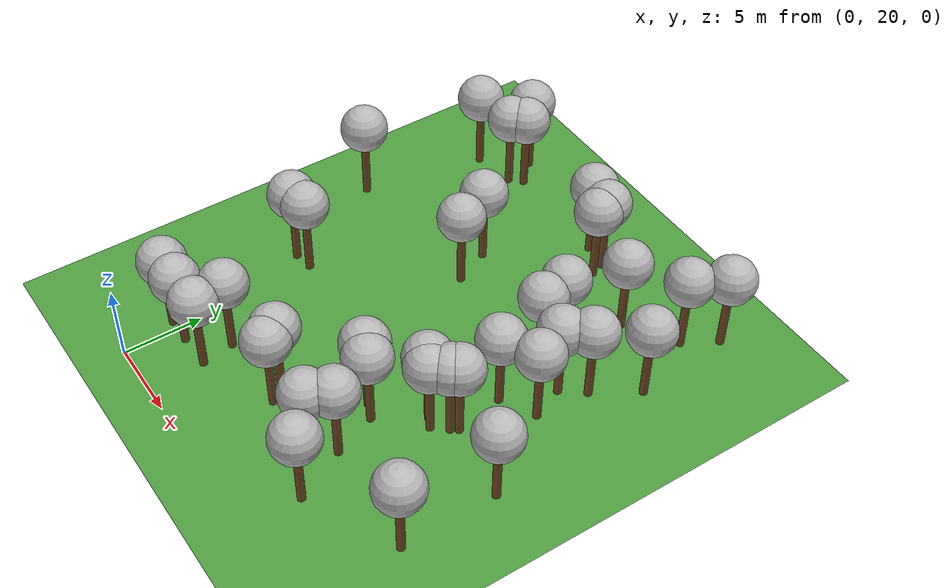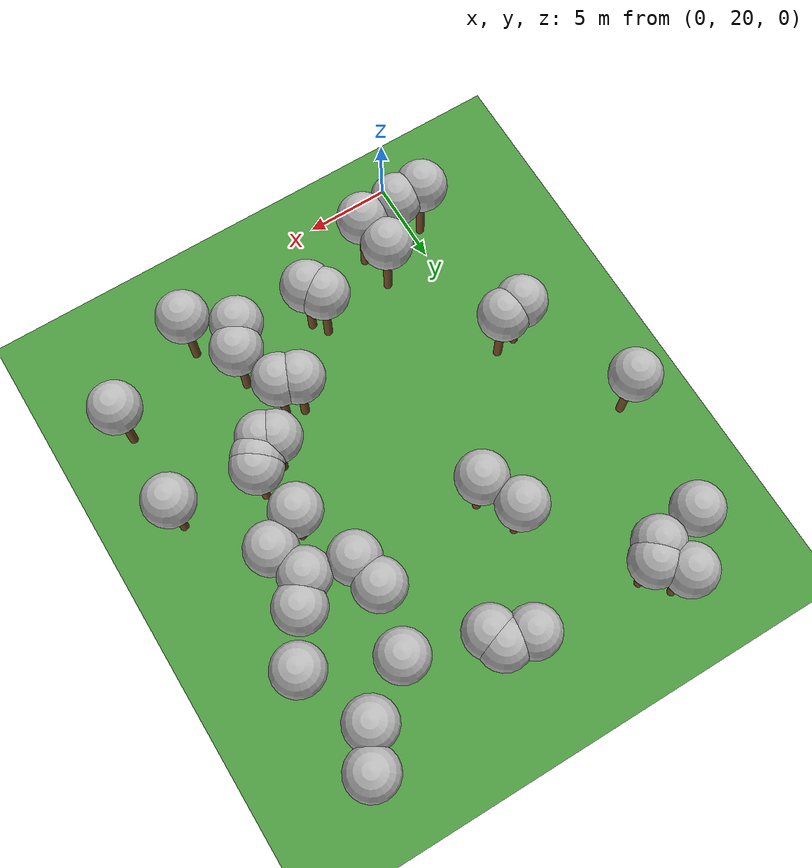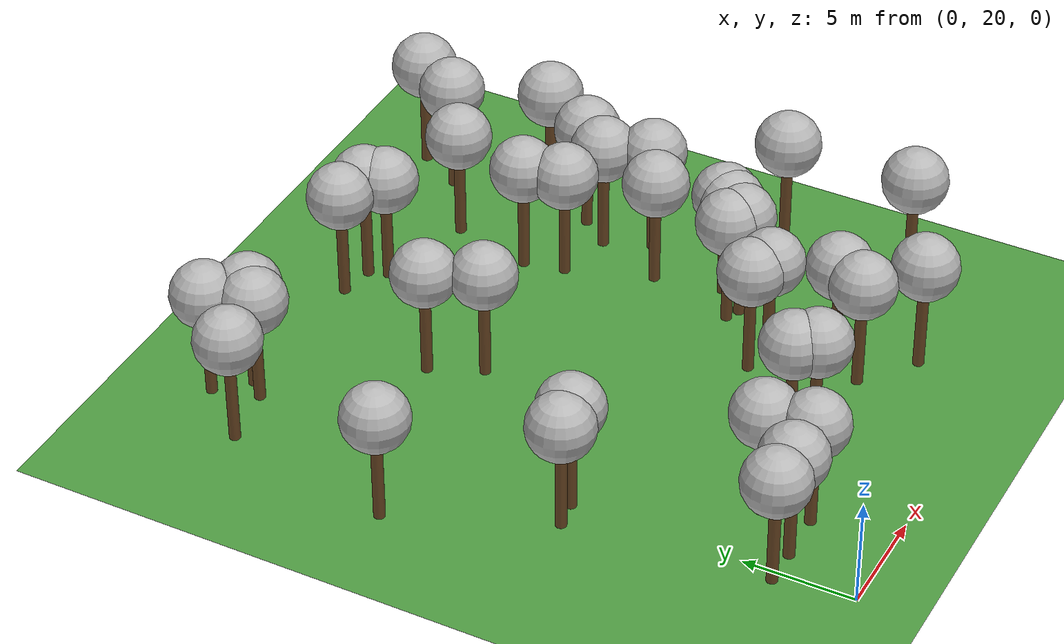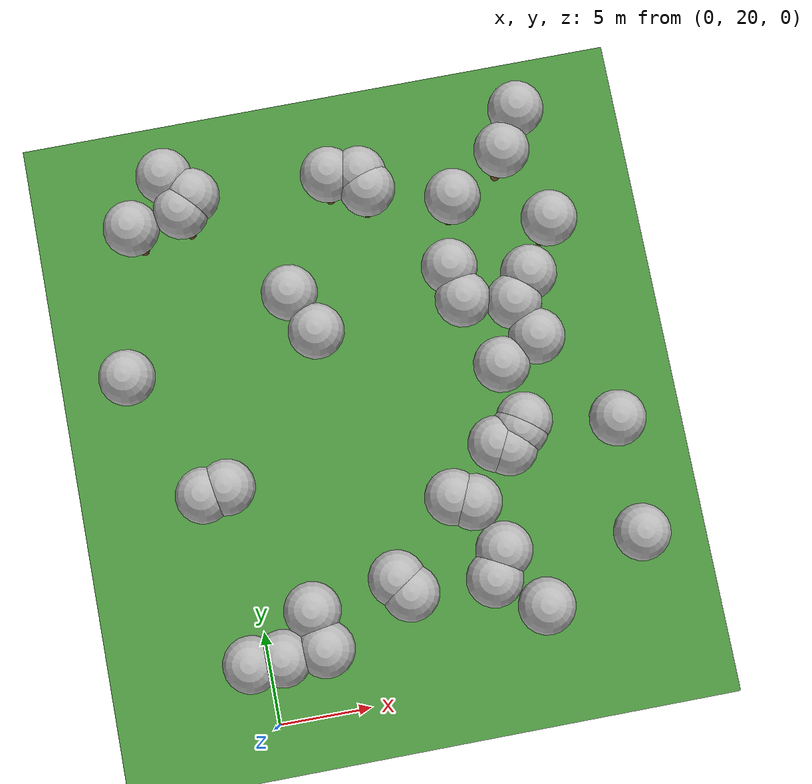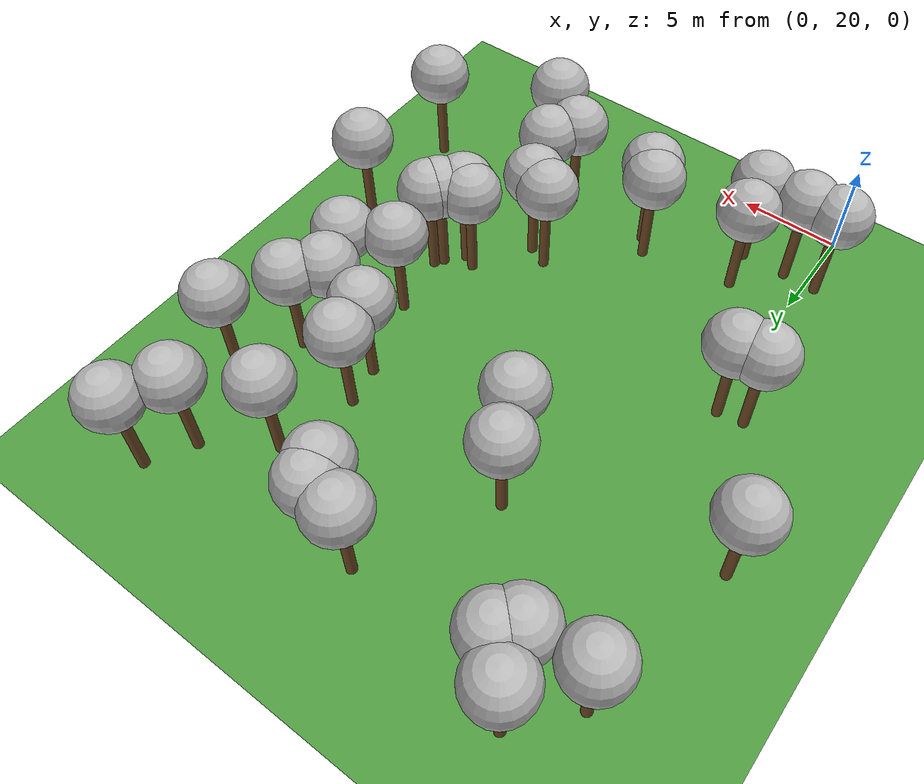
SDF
<sdf version="1.5">
 <world name="default">
  <model name="tree_simple477">
   <static>1</static>
   <link name="link">
    <pose>0 0 0.1 0 -0 0</pose>
    <collision name="collision_trunk">
     <pose>0 0 2 0 -0 0</pose>
     <geometry><cylinder><radius>0.25</radius><length>4</length></cylinder></geometry>
    </collision>
    <collision name="collision_treetop">
     <pose>0 0 5.2 0 -0 0</pose>
     <geometry><sphere><radius>1.5</radius></sphere></geometry>
    </collision>
    <visual name="trunk">
     <pose>0 0 2 0 -0 0</pose>
     <geometry><cylinder><radius>0.25</radius><length>4</length></cylinder></geometry>
     <material>
      <script>
       <uri>model://tree_simple/scripts</uri>
       <uri>model://tree_simple/materials/textures</uri>
       <name>TreeSimple/Trunk</name>
      </script>
     </material>
    </visual>
    <visual name="treetop">
     <pose>0 0 5.2 0 -0 0</pose>
     <geometry><sphere><radius>1.5</radius></sphere></geometry>
     <material>
      <script>
       <uri>model://tree_simple/scripts</uri>
       <uri>model://tree_simple/materials/textures</uri>
       <name>TreeSimple/Treetop</name>
      </script>
     </material>
    </visual>
   </link>
   <pose>-0.22927085135 32.6495918535 0 0 -0 0</pose>
  </model>
  <model name="tree_simple457">
   <static>1</static>
   <link name="link">
    <pose>0 0 0.1 0 -0 0</pose>
    <collision name="collision_trunk">
     <pose>0 0 2 0 -0 0</pose>
     <geometry><cylinder><radius>0.25</radius><length>4</length></cylinder></geometry>
    </collision>
    <collision name="collision_treetop">
     <pose>0 0 5.2 0 -0 0</pose>
     <geometry><sphere><radius>1.5</radius></sphere></geometry>
    </collision>
    <visual name="trunk">
     <pose>0 0 2 0 -0 0</pose>
     <geometry><cylinder><radius>0.25</radius><length>4</length></cylinder></geometry>
     <material>
      <script>
       <uri>model://tree_simple/scripts</uri>
       <uri>model://tree_simple/materials/textures</uri>
       <name>TreeSimple/Trunk</name>
      </script>
     </material>
    </visual>
    <visual name="treetop">
     <pose>0 0 5.2 0 -0 0</pose>
     <geometry><sphere><radius>1.5</radius></sphere></geometry>
     <material>
      <script>
       <uri>model://tree_simple/scripts</uri>
       <uri>model://tree_simple/materials/textures</uri>
       <name>TreeSimple/Treetop</name>
      </script>
     </material>
    </visual>
   </link>
   <pose>13.2865883098 26.7984826025 0 0 -0 0</pose>
  </model>
  <model name="tree_simple445">
   <static>1</static>
   <link name="link">
    <pose>0 0 0.1 0 -0 0</pose>
    <collision name="collision_trunk">
     <pose>0 0 2 0 -0 0</pose>
     <geometry><cylinder><radius>0.25</radius><length>4</length></cylinder></geometry>
    </collision>
    <collision name="collision_treetop">
     <pose>0 0 5.2 0 -0 0</pose>
     <geometry><sphere><radius>1.5</radius></sphere></geometry>
    </collision>
    <visual name="trunk">
     <pose>0 0 2 0 -0 0</pose>
     <geometry><cylinder><radius>0.25</radius><length>4</length></cylinder></geometry>
     <material>
      <script>
       <uri>model://tree_simple/scripts</uri>
       <uri>model://tree_simple/materials/textures</uri>
       <name>TreeSimple/Trunk</name>
      </script>
     </material>
    </visual>
    <visual name="treetop">
     <pose>0 0 5.2 0 -0 0</pose>
     <geometry><sphere><radius>1.5</radius></sphere></geometry>
     <material>
      <script>
       <uri>model://tree_simple/scripts</uri>
       <uri>model://tree_simple/materials/textures</uri>
       <name>TreeSimple/Treetop</name>
      </script>
     </material>
    </visual>
   </link>
   <pose>17.3330924595 47.7477611906 0 0 -0 0</pose>
  </model>
  <model name="tree_simple443">
   <static>1</static>
   <link name="link">
    <pose>0 0 0.1 0 -0 0</pose>
    <collision name="collision_trunk">
     <pose>0 0 2 0 -0 0</pose>
     <geometry><cylinder><radius>0.25</radius><length>4</length></cylinder></geometry>
    </collision>
    <collision name="collision_treetop">
     <pose>0 0 5.2 0 -0 0</pose>
     <geometry><sphere><radius>1.5</radius></sphere></geometry>
    </collision>
    <visual name="trunk">
     <pose>0 0 2 0 -0 0</pose>
     <geometry><cylinder><radius>0.25</radius><length>4</length></cylinder></geometry>
     <material>
      <script>
       <uri>model://tree_simple/scripts</uri>
       <uri>model://tree_simple/materials/textures</uri>
       <name>TreeSimple/Trunk</name>
      </script>
     </material>
    </visual>
    <visual name="treetop">
     <pose>0 0 5.2 0 -0 0</pose>
     <geometry><sphere><radius>1.5</radius></sphere></geometry>
     <material>
      <script>
       <uri>model://tree_simple/scripts</uri>
       <uri>model://tree_simple/materials/textures</uri>
       <name>TreeSimple/Treetop</name>
      </script>
     </material>
    </visual>
   </link>
   <pose>20.4518447393 32.4372971603 0 0 -0 0</pose>
  </model>
  <model name="tree_simple419">
   <static>1</static>
   <link name="link">
    <pose>0 0 0.1 0 -0 0</pose>
    <collision name="collision_trunk">
     <pose>0 0 2 0 -0 0</pose>
     <geometry><cylinder><radius>0.25</radius><length>4</length></cylinder></geometry>
    </collision>
    <collision name="collision_treetop">
     <pose>0 0 5.2 0 -0 0</pose>
     <geometry><sphere><radius>1.5</radius></sphere></geometry>
    </collision>
    <visual name="trunk">
     <pose>0 0 2 0 -0 0</pose>
     <geometry><cylinder><radius>0.25</radius><length>4</length></cylinder></geometry>
     <material>
      <script>
       <uri>model://tree_simple/scripts</uri>
       <uri>model://tree_simple/materials/textures</uri>
       <name>TreeSimple/Trunk</name>
      </script>
     </material>
    </visual>
    <visual name="treetop">
     <pose>0 0 5.2 0 -0 0</pose>
     <geometry><sphere><radius>1.5</radius></sphere></geometry>
     <material>
      <script>
       <uri>model://tree_simple/scripts</uri>
       <uri>model://tree_simple/materials/textures</uri>
       <name>TreeSimple/Treetop</name>
      </script>
     </material>
    </visual>
   </link>
   <pose>15.0608261067 36.3391301174 0 0 -0 0</pose>
  </model>
  <model name="tree_simple413">
   <static>1</static>
   <link name="link">
    <pose>0 0 0.1 0 -0 0</pose>
    <collision name="collision_trunk">
     <pose>0 0 2 0 -0 0</pose>
     <geometry><cylinder><radius>0.25</radius><length>4</length></cylinder></geometry>
    </collision>
    <collision name="collision_treetop">
     <pose>0 0 5.2 0 -0 0</pose>
     <geometry><sphere><radius>1.5</radius></sphere></geometry>
    </collision>
    <visual name="trunk">
     <pose>0 0 2 0 -0 0</pose>
     <geometry><cylinder><radius>0.25</radius><length>4</length></cylinder></geometry>
     <material>
      <script>
       <uri>model://tree_simple/scripts</uri>
       <uri>model://tree_simple/materials/textures</uri>
       <name>TreeSimple/Trunk</name>
      </script>
     </material>
    </visual>
    <visual name="treetop">
     <pose>0 0 5.2 0 -0 0</pose>
     <geometry><sphere><radius>1.5</radius></sphere></geometry>
     <material>
      <script>
       <uri>model://tree_simple/scripts</uri>
       <uri>model://tree_simple/materials/textures</uri>
       <name>TreeSimple/Treetop</name>
      </script>
     </material>
    </visual>
   </link>
   <pose>4.79772995732 42.1907919742 0 0 -0 0</pose>
  </model>
  <model name="tree_simple405">
   <static>1</static>
   <link name="link">
    <pose>0 0 0.1 0 -0 0</pose>
    <collision name="collision_trunk">
     <pose>0 0 2 0 -0 0</pose>
     <geometry><cylinder><radius>0.25</radius><length>4</length></cylinder></geometry>
    </collision>
    <collision name="collision_treetop">
     <pose>0 0 5.2 0 -0 0</pose>
     <geometry><sphere><radius>1.5</radius></sphere></geometry>
    </collision>
    <visual name="trunk">
     <pose>0 0 2 0 -0 0</pose>
     <geometry><cylinder><radius>0.25</radius><length>4</length></cylinder></geometry>
     <material>
      <script>
       <uri>model://tree_simple/scripts</uri>
       <uri>model://tree_simple/materials/textures</uri>
       <name>TreeSimple/Trunk</name>
      </script>
     </material>
    </visual>
    <visual name="treetop">
     <pose>0 0 5.2 0 -0 0</pose>
     <geometry><sphere><radius>1.5</radius></sphere></geometry>
     <material>
      <script>
       <uri>model://tree_simple/scripts</uri>
       <uri>model://tree_simple/materials/textures</uri>
       <name>TreeSimple/Treetop</name>
      </script>
     </material>
    </visual>
   </link>
   <pose>13.9640568795 32.2793272532 0 0 -0 0</pose>
  </model>
  <model name="tree_simple401">
   <static>1</static>
   <link name="link">
    <pose>0 0 0.1 0 -0 0</pose>
    <collision name="collision_trunk">
     <pose>0 0 2 0 -0 0</pose>
     <geometry><cylinder><radius>0.25</radius><length>4</length></cylinder></geometry>
    </collision>
    <collision name="collision_treetop">
     <pose>0 0 5.2 0 -0 0</pose>
     <geometry><sphere><radius>1.5</radius></sphere></geometry>
    </collision>
    <visual name="trunk">
     <pose>0 0 2 0 -0 0</pose>
     <geometry><cylinder><radius>0.25</radius><length>4</length></cylinder></geometry>
     <material>
      <script>
       <uri>model://tree_simple/scripts</uri>
       <uri>model://tree_simple/materials/textures</uri>
       <name>TreeSimple/Trunk</name>
      </script>
     </material>
    </visual>
    <visual name="treetop">
     <pose>0 0 5.2 0 -0 0</pose>
     <geometry><sphere><radius>1.5</radius></sphere></geometry>
     <material>
      <script>
       <uri>model://tree_simple/scripts</uri>
       <uri>model://tree_simple/materials/textures</uri>
       <name>TreeSimple/Treetop</name>
      </script>
     </material>
    </visual>
   </link>
   <pose>18.5119614972 49.8300347258 0 0 -0 0</pose>
  </model>
  <model name="tree_simple381">
   <static>1</static>
   <link name="link">
    <pose>0 0 0.1 0 -0 0</pose>
    <collision name="collision_trunk">
     <pose>0 0 2 0 -0 0</pose>
     <geometry><cylinder><radius>0.25</radius><length>4</length></cylinder></geometry>
    </collision>
    <collision name="collision_treetop">
     <pose>0 0 5.2 0 -0 0</pose>
     <geometry><sphere><radius>1.5</radius></sphere></geometry>
    </collision>
    <visual name="trunk">
     <pose>0 0 2 0 -0 0</pose>
     <geometry><cylinder><radius>0.25</radius><length>4</length></cylinder></geometry>
     <material>
      <script>
       <uri>model://tree_simple/scripts</uri>
       <uri>model://tree_simple/materials/textures</uri>
       <name>TreeSimple/Trunk</name>
      </script>
     </material>
    </visual>
    <visual name="treetop">
     <pose>0 0 5.2 0 -0 0</pose>
     <geometry><sphere><radius>1.5</radius></sphere></geometry>
     <material>
      <script>
       <uri>model://tree_simple/scripts</uri>
       <uri>model://tree_simple/materials/textures</uri>
       <name>TreeSimple/Treetop</name>
      </script>
     </material>
    </visual>
   </link>
   <pose>14.598493672 31.9609585056 0 0 -0 0</pose>
  </model>
  <model name="tree_simple372">
   <static>1</static>
   <link name="link">
    <pose>0 0 0.1 0 -0 0</pose>
    <collision name="collision_trunk">
     <pose>0 0 2 0 -0 0</pose>
     <geometry><cylinder><radius>0.25</radius><length>4</length></cylinder></geometry>
    </collision>
    <collision name="collision_treetop">
     <pose>0 0 5.2 0 -0 0</pose>
     <geometry><sphere><radius>1.5</radius></sphere></geometry>
    </collision>
    <visual name="trunk">
     <pose>0 0 2 0 -0 0</pose>
     <geometry><cylinder><radius>0.25</radius><length>4</length></cylinder></geometry>
     <material>
      <script>
       <uri>model://tree_simple/scripts</uri>
       <uri>model://tree_simple/materials/textures</uri>
       <name>TreeSimple/Trunk</name>
      </script>
     </material>
    </visual>
    <visual name="treetop">
     <pose>0 0 5.2 0 -0 0</pose>
     <geometry><sphere><radius>1.5</radius></sphere></geometry>
     <material>
      <script>
       <uri>model://tree_simple/scripts</uri>
       <uri>model://tree_simple/materials/textures</uri>
       <name>TreeSimple/Treetop</name>
      </script>
     </material>
    </visual>
   </link>
   <pose>19.0807104519 43.6051965294 0 0 -0 0</pose>
  </model>
  <model name="tree_simple367">
   <static>1</static>
   <link name="link">
    <pose>0 0 0.1 0 -0 0</pose>
    <collision name="collision_trunk">
     <pose>0 0 2 0 -0 0</pose>
     <geometry><cylinder><radius>0.25</radius><length>4</length></cylinder></geometry>
    </collision>
    <collision name="collision_treetop">
     <pose>0 0 5.2 0 -0 0</pose>
     <geometry><sphere><radius>1.5</radius></sphere></geometry>
    </collision>
    <visual name="trunk">
     <pose>0 0 2 0 -0 0</pose>
     <geometry><cylinder><radius>0.25</radius><length>4</length></cylinder></geometry>
     <material>
      <script>
       <uri>model://tree_simple/scripts</uri>
       <uri>model://tree_simple/materials/textures</uri>
       <name>TreeSimple/Trunk</name>
      </script>
     </material>
    </visual>
    <visual name="treetop">
     <pose>0 0 5.2 0 -0 0</pose>
     <geometry><sphere><radius>1.5</radius></sphere></geometry>
     <material>
      <script>
       <uri>model://tree_simple/scripts</uri>
       <uri>model://tree_simple/materials/textures</uri>
       <name>TreeSimple/Treetop</name>
      </script>
     </material>
    </visual>
   </link>
   <pose>14.2659299001 45.7179827091 0 0 -0 0</pose>
  </model>
  <model name="tree_simple365">
   <static>1</static>
   <link name="link">
    <pose>0 0 0.1 0 -0 0</pose>
    <collision name="collision_trunk">
     <pose>0 0 2 0 -0 0</pose>
     <geometry><cylinder><radius>0.25</radius><length>4</length></cylinder></geometry>
    </collision>
    <collision name="collision_treetop">
     <pose>0 0 5.2 0 -0 0</pose>
     <geometry><sphere><radius>1.5</radius></sphere></geometry>
    </collision>
    <visual name="trunk">
     <pose>0 0 2 0 -0 0</pose>
     <geometry><cylinder><radius>0.25</radius><length>4</length></cylinder></geometry>
     <material>
      <script>
       <uri>model://tree_simple/scripts</uri>
       <uri>model://tree_simple/materials/textures</uri>
       <name>TreeSimple/Trunk</name>
      </script>
     </material>
    </visual>
    <visual name="treetop">
     <pose>0 0 5.2 0 -0 0</pose>
     <geometry><sphere><radius>1.5</radius></sphere></geometry>
     <material>
      <script>
       <uri>model://tree_simple/scripts</uri>
       <uri>model://tree_simple/materials/textures</uri>
       <name>TreeSimple/Treetop</name>
      </script>
     </material>
    </visual>
   </link>
   <pose>7.96669325113 48.1339153876 0 0 -0 0</pose>
  </model>
  <model name="tree_simple356">
   <static>1</static>
   <link name="link">
    <pose>0 0 0.1 0 -0 0</pose>
    <collision name="collision_trunk">
     <pose>0 0 2 0 -0 0</pose>
     <geometry><cylinder><radius>0.25</radius><length>4</length></cylinder></geometry>
    </collision>
    <collision name="collision_treetop">
     <pose>0 0 5.2 0 -0 0</pose>
     <geometry><sphere><radius>1.5</radius></sphere></geometry>
    </collision>
    <visual name="trunk">
     <pose>0 0 2 0 -0 0</pose>
     <geometry><cylinder><radius>0.25</radius><length>4</length></cylinder></geometry>
     <material>
      <script>
       <uri>model://tree_simple/scripts</uri>
       <uri>model://tree_simple/materials/textures</uri>
       <name>TreeSimple/Trunk</name>
      </script>
     </material>
    </visual>
    <visual name="treetop">
     <pose>0 0 5.2 0 -0 0</pose>
     <geometry><sphere><radius>1.5</radius></sphere></geometry>
     <material>
      <script>
       <uri>model://tree_simple/scripts</uri>
       <uri>model://tree_simple/materials/textures</uri>
       <name>TreeSimple/Treetop</name>
      </script>
     </material>
    </visual>
   </link>
   <pose>-2.83030100633 47.164879459 0 0 -0 0</pose>
  </model>
  <model name="tree_simple340">
   <static>1</static>
   <link name="link">
    <pose>0 0 0.1 0 -0 0</pose>
    <collision name="collision_trunk">
     <pose>0 0 2 0 -0 0</pose>
     <geometry><cylinder><radius>0.25</radius><length>4</length></cylinder></geometry>
    </collision>
    <collision name="collision_treetop">
     <pose>0 0 5.2 0 -0 0</pose>
     <geometry><sphere><radius>1.5</radius></sphere></geometry>
    </collision>
    <visual name="trunk">
     <pose>0 0 2 0 -0 0</pose>
     <geometry><cylinder><radius>0.25</radius><length>4</length></cylinder></geometry>
     <material>
      <script>
       <uri>model://tree_simple/scripts</uri>
       <uri>model://tree_simple/materials/textures</uri>
       <name>TreeSimple/Trunk</name>
      </script>
     </material>
    </visual>
    <visual name="treetop">
     <pose>0 0 5.2 0 -0 0</pose>
     <geometry><sphere><radius>1.5</radius></sphere></geometry>
     <material>
      <script>
       <uri>model://tree_simple/scripts</uri>
       <uri>model://tree_simple/materials/textures</uri>
       <name>TreeSimple/Treetop</name>
      </script>
     </material>
    </visual>
   </link>
   <pose>15.6359324045 33.2415832038 0 0 -0 0</pose>
  </model>
  <model name="tree_simple339">
   <static>1</static>
   <link name="link">
    <pose>0 0 0.1 0 -0 0</pose>
    <collision name="collision_trunk">
     <pose>0 0 2 0 -0 0</pose>
     <geometry><cylinder><radius>0.25</radius><length>4</length></cylinder></geometry>
    </collision>
    <collision name="collision_treetop">
     <pose>0 0 5.2 0 -0 0</pose>
     <geometry><sphere><radius>1.5</radius></sphere></geometry>
    </collision>
    <visual name="trunk">
     <pose>0 0 2 0 -0 0</pose>
     <geometry><cylinder><radius>0.25</radius><length>4</length></cylinder></geometry>
     <material>
      <script>
       <uri>model://tree_simple/scripts</uri>
       <uri>model://tree_simple/materials/textures</uri>
       <name>TreeSimple/Trunk</name>
      </script>
     </material>
    </visual>
    <visual name="treetop">
     <pose>0 0 5.2 0 -0 0</pose>
     <geometry><sphere><radius>1.5</radius></sphere></geometry>
     <material>
      <script>
       <uri>model://tree_simple/scripts</uri>
       <uri>model://tree_simple/materials/textures</uri>
       <name>TreeSimple/Treetop</name>
      </script>
     </material>
    </visual>
   </link>
   <pose>8.14193712957 25.5166560065 0 0 -0 0</pose>
  </model>
  <model name="tree_simple328">
   <static>1</static>
   <link name="link">
    <pose>0 0 0.1 0 -0 0</pose>
    <collision name="collision_trunk">
     <pose>0 0 2 0 -0 0</pose>
     <geometry><cylinder><radius>0.25</radius><length>4</length></cylinder></geometry>
    </collision>
    <collision name="collision_treetop">
     <pose>0 0 5.2 0 -0 0</pose>
     <geometry><sphere><radius>1.5</radius></sphere></geometry>
    </collision>
    <visual name="trunk">
     <pose>0 0 2 0 -0 0</pose>
     <geometry><cylinder><radius>0.25</radius><length>4</length></cylinder></geometry>
     <material>
      <script>
       <uri>model://tree_simple/scripts</uri>
       <uri>model://tree_simple/materials/textures</uri>
       <name>TreeSimple/Trunk</name>
      </script>
     </material>
    </visual>
    <visual name="treetop">
     <pose>0 0 5.2 0 -0 0</pose>
     <geometry><sphere><radius>1.5</radius></sphere></geometry>
     <material>
      <script>
       <uri>model://tree_simple/scripts</uri>
       <uri>model://tree_simple/materials/textures</uri>
       <name>TreeSimple/Treetop</name>
      </script>
     </material>
    </visual>
   </link>
   <pose>3.34573808519 23.5188113382 0 0 -0 0</pose>
  </model>
  <model name="tree_simple325">
   <static>1</static>
   <link name="link">
    <pose>0 0 0.1 0 -0 0</pose>
    <collision name="collision_trunk">
     <pose>0 0 2 0 -0 0</pose>
     <geometry><cylinder><radius>0.25</radius><length>4</length></cylinder></geometry>
    </collision>
    <collision name="collision_treetop">
     <pose>0 0 5.2 0 -0 0</pose>
     <geometry><sphere><radius>1.5</radius></sphere></geometry>
    </collision>
    <visual name="trunk">
     <pose>0 0 2 0 -0 0</pose>
     <geometry><cylinder><radius>0.25</radius><length>4</length></cylinder></geometry>
     <material>
      <script>
       <uri>model://tree_simple/scripts</uri>
       <uri>model://tree_simple/materials/textures</uri>
       <name>TreeSimple/Trunk</name>
      </script>
     </material>
    </visual>
    <visual name="treetop">
     <pose>0 0 5.2 0 -0 0</pose>
     <geometry><sphere><radius>1.5</radius></sphere></geometry>
     <material>
      <script>
       <uri>model://tree_simple/scripts</uri>
       <uri>model://tree_simple/materials/textures</uri>
       <name>TreeSimple/Treetop</name>
      </script>
     </material>
    </visual>
   </link>
   <pose>16.3512762839 39.5353955834 0 0 -0 0</pose>
  </model>
  <model name="tree_simple320">
   <static>1</static>
   <link name="link">
    <pose>0 0 0.1 0 -0 0</pose>
    <collision name="collision_trunk">
     <pose>0 0 2 0 -0 0</pose>
     <geometry><cylinder><radius>0.25</radius><length>4</length></cylinder></geometry>
    </collision>
    <collision name="collision_treetop">
     <pose>0 0 5.2 0 -0 0</pose>
     <geometry><sphere><radius>1.5</radius></sphere></geometry>
    </collision>
    <visual name="trunk">
     <pose>0 0 2 0 -0 0</pose>
     <geometry><cylinder><radius>0.25</radius><length>4</length></cylinder></geometry>
     <material>
      <script>
       <uri>model://tree_simple/scripts</uri>
       <uri>model://tree_simple/materials/textures</uri>
       <name>TreeSimple/Trunk</name>
      </script>
     </material>
    </visual>
    <visual name="treetop">
     <pose>0 0 5.2 0 -0 0</pose>
     <geometry><sphere><radius>1.5</radius></sphere></geometry>
     <material>
      <script>
       <uri>model://tree_simple/scripts</uri>
       <uri>model://tree_simple/materials/textures</uri>
       <name>TreeSimple/Treetop</name>
      </script>
     </material>
    </visual>
   </link>
   <pose>17.4267796311 40.9028236297 0 0 -0 0</pose>
  </model>
  <model name="tree_simple302">
   <static>1</static>
   <link name="link">
    <pose>0 0 0.1 0 -0 0</pose>
    <collision name="collision_trunk">
     <pose>0 0 2 0 -0 0</pose>
     <geometry><cylinder><radius>0.25</radius><length>4</length></cylinder></geometry>
    </collision>
    <collision name="collision_treetop">
     <pose>0 0 5.2 0 -0 0</pose>
     <geometry><sphere><radius>1.5</radius></sphere></geometry>
    </collision>
    <visual name="trunk">
     <pose>0 0 2 0 -0 0</pose>
     <geometry><cylinder><radius>0.25</radius><length>4</length></cylinder></geometry>
     <material>
      <script>
       <uri>model://tree_simple/scripts</uri>
       <uri>model://tree_simple/materials/textures</uri>
       <name>TreeSimple/Trunk</name>
      </script>
     </material>
    </visual>
    <visual name="treetop">
     <pose>0 0 5.2 0 -0 0</pose>
     <geometry><sphere><radius>1.5</radius></sphere></geometry>
     <material>
      <script>
       <uri>model://tree_simple/scripts</uri>
       <uri>model://tree_simple/materials/textures</uri>
       <name>TreeSimple/Treetop</name>
      </script>
     </material>
    </visual>
   </link>
   <pose>-4.36833306423 39.3035065939 0 0 -0 0</pose>
  </model>
  <model name="tree_simple299">
   <static>1</static>
   <link name="link">
    <pose>0 0 0.1 0 -0 0</pose>
    <collision name="collision_trunk">
     <pose>0 0 2 0 -0 0</pose>
     <geometry><cylinder><radius>0.25</radius><length>4</length></cylinder></geometry>
    </collision>
    <collision name="collision_treetop">
     <pose>0 0 5.2 0 -0 0</pose>
     <geometry><sphere><radius>1.5</radius></sphere></geometry>
    </collision>
    <visual name="trunk">
     <pose>0 0 2 0 -0 0</pose>
     <geometry><cylinder><radius>0.25</radius><length>4</length></cylinder></geometry>
     <material>
      <script>
       <uri>model://tree_simple/scripts</uri>
       <uri>model://tree_simple/materials/textures</uri>
       <name>TreeSimple/Trunk</name>
      </script>
     </material>
    </visual>
    <visual name="treetop">
     <pose>0 0 5.2 0 -0 0</pose>
     <geometry><sphere><radius>1.5</radius></sphere></geometry>
     <material>
      <script>
       <uri>model://tree_simple/scripts</uri>
       <uri>model://tree_simple/materials/textures</uri>
       <name>TreeSimple/Treetop</name>
      </script>
     </material>
    </visual>
   </link>
   <pose>-1.46806320409 32.459422197 0 0 -0 0</pose>
  </model>
  <model name="tree_simple287">
   <static>1</static>
   <link name="link">
    <pose>0 0 0.1 0 -0 0</pose>
    <collision name="collision_trunk">
     <pose>0 0 2 0 -0 0</pose>
     <geometry><cylinder><radius>0.25</radius><length>4</length></cylinder></geometry>
    </collision>
    <collision name="collision_treetop">
     <pose>0 0 5.2 0 -0 0</pose>
     <geometry><sphere><radius>1.5</radius></sphere></geometry>
    </collision>
    <visual name="trunk">
     <pose>0 0 2 0 -0 0</pose>
     <geometry><cylinder><radius>0.25</radius><length>4</length></cylinder></geometry>
     <material>
      <script>
       <uri>model://tree_simple/scripts</uri>
       <uri>model://tree_simple/materials/textures</uri>
       <name>TreeSimple/Trunk</name>
      </script>
     </material>
    </visual>
    <visual name="treetop">
     <pose>0 0 5.2 0 -0 0</pose>
     <geometry><sphere><radius>1.5</radius></sphere></geometry>
     <material>
      <script>
       <uri>model://tree_simple/scripts</uri>
       <uri>model://tree_simple/materials/textures</uri>
       <name>TreeSimple/Treetop</name>
      </script>
     </material>
    </visual>
   </link>
   <pose>5.81960290033 39.8953620518 0 0 -0 0</pose>
  </model>
  <model name="tree_simple275">
   <static>1</static>
   <link name="link">
    <pose>0 0 0.1 0 -0 0</pose>
    <collision name="collision_trunk">
     <pose>0 0 2 0 -0 0</pose>
     <geometry><cylinder><radius>0.25</radius><length>4</length></cylinder></geometry>
    </collision>
    <collision name="collision_treetop">
     <pose>0 0 5.2 0 -0 0</pose>
     <geometry><sphere><radius>1.5</radius></sphere></geometry>
    </collision>
    <visual name="trunk">
     <pose>0 0 2 0 -0 0</pose>
     <geometry><cylinder><radius>0.25</radius><length>4</length></cylinder></geometry>
     <material>
      <script>
       <uri>model://tree_simple/scripts</uri>
       <uri>model://tree_simple/materials/textures</uri>
       <name>TreeSimple/Trunk</name>
      </script>
     </material>
    </visual>
    <visual name="treetop">
     <pose>0 0 5.2 0 -0 0</pose>
     <geometry><sphere><radius>1.5</radius></sphere></geometry>
     <material>
      <script>
       <uri>model://tree_simple/scripts</uri>
       <uri>model://tree_simple/materials/textures</uri>
       <name>TreeSimple/Treetop</name>
      </script>
     </material>
    </visual>
   </link>
   <pose>11.2194181464 29.9629539421 0 0 -0 0</pose>
  </model>
  <model name="tree_simple273">
   <static>1</static>
   <link name="link">
    <pose>0 0 0.1 0 -0 0</pose>
    <collision name="collision_trunk">
     <pose>0 0 2 0 -0 0</pose>
     <geometry><cylinder><radius>0.25</radius><length>4</length></cylinder></geometry>
    </collision>
    <collision name="collision_treetop">
     <pose>0 0 5.2 0 -0 0</pose>
     <geometry><sphere><radius>1.5</radius></sphere></geometry>
    </collision>
    <visual name="trunk">
     <pose>0 0 2 0 -0 0</pose>
     <geometry><cylinder><radius>0.25</radius><length>4</length></cylinder></geometry>
     <material>
      <script>
       <uri>model://tree_simple/scripts</uri>
       <uri>model://tree_simple/materials/textures</uri>
       <name>TreeSimple/Trunk</name>
      </script>
     </material>
    </visual>
    <visual name="treetop">
     <pose>0 0 5.2 0 -0 0</pose>
     <geometry><sphere><radius>1.5</radius></sphere></geometry>
     <material>
      <script>
       <uri>model://tree_simple/scripts</uri>
       <uri>model://tree_simple/materials/textures</uri>
       <name>TreeSimple/Treetop</name>
      </script>
     </material>
    </visual>
   </link>
   <pose>0.615452914857 48.3188405116 0 0 -0 0</pose>
  </model>
  <model name="tree_simple260">
   <static>1</static>
   <link name="link">
    <pose>0 0 0.1 0 -0 0</pose>
    <collision name="collision_trunk">
     <pose>0 0 2 0 -0 0</pose>
     <geometry><cylinder><radius>0.25</radius><length>4</length></cylinder></geometry>
    </collision>
    <collision name="collision_treetop">
     <pose>0 0 5.2 0 -0 0</pose>
     <geometry><sphere><radius>1.5</radius></sphere></geometry>
    </collision>
    <visual name="trunk">
     <pose>0 0 2 0 -0 0</pose>
     <geometry><cylinder><radius>0.25</radius><length>4</length></cylinder></geometry>
     <material>
      <script>
       <uri>model://tree_simple/scripts</uri>
       <uri>model://tree_simple/materials/textures</uri>
       <name>TreeSimple/Trunk</name>
      </script>
     </material>
    </visual>
    <visual name="treetop">
     <pose>0 0 5.2 0 -0 0</pose>
     <geometry><sphere><radius>1.5</radius></sphere></geometry>
     <material>
      <script>
       <uri>model://tree_simple/scripts</uri>
       <uri>model://tree_simple/materials/textures</uri>
       <name>TreeSimple/Treetop</name>
      </script>
     </material>
    </visual>
   </link>
   <pose>20.4747246255 26.3739745209 0 0 -0 0</pose>
  </model>
  <model name="tree_simple254">
   <static>1</static>
   <link name="link">
    <pose>0 0 0.1 0 -0 0</pose>
    <collision name="collision_trunk">
     <pose>0 0 2 0 -0 0</pose>
     <geometry><cylinder><radius>0.25</radius><length>4</length></cylinder></geometry>
    </collision>
    <collision name="collision_treetop">
     <pose>0 0 5.2 0 -0 0</pose>
     <geometry><sphere><radius>1.5</radius></sphere></geometry>
    </collision>
    <visual name="trunk">
     <pose>0 0 2 0 -0 0</pose>
     <geometry><cylinder><radius>0.25</radius><length>4</length></cylinder></geometry>
     <material>
      <script>
       <uri>model://tree_simple/scripts</uri>
       <uri>model://tree_simple/materials/textures</uri>
       <name>TreeSimple/Trunk</name>
      </script>
     </material>
    </visual>
    <visual name="treetop">
     <pose>0 0 5.2 0 -0 0</pose>
     <geometry><sphere><radius>1.5</radius></sphere></geometry>
     <material>
      <script>
       <uri>model://tree_simple/scripts</uri>
       <uri>model://tree_simple/materials/textures</uri>
       <name>TreeSimple/Treetop</name>
      </script>
     </material>
    </visual>
   </link>
   <pose>13.3684370787 41.9999258399 0 0 -0 0</pose>
  </model>
  <model name="tree_simple229">
   <static>1</static>
   <link name="link">
    <pose>0 0 0.1 0 -0 0</pose>
    <collision name="collision_trunk">
     <pose>0 0 2 0 -0 0</pose>
     <geometry><cylinder><radius>0.25</radius><length>4</length></cylinder></geometry>
    </collision>
    <collision name="collision_treetop">
     <pose>0 0 5.2 0 -0 0</pose>
     <geometry><sphere><radius>1.5</radius></sphere></geometry>
    </collision>
    <visual name="trunk">
     <pose>0 0 2 0 -0 0</pose>
     <geometry><cylinder><radius>0.25</radius><length>4</length></cylinder></geometry>
     <material>
      <script>
       <uri>model://tree_simple/scripts</uri>
       <uri>model://tree_simple/materials/textures</uri>
       <name>TreeSimple/Trunk</name>
      </script>
     </material>
    </visual>
    <visual name="treetop">
     <pose>0 0 5.2 0 -0 0</pose>
     <geometry><sphere><radius>1.5</radius></sphere></geometry>
     <material>
      <script>
       <uri>model://tree_simple/scripts</uri>
       <uri>model://tree_simple/materials/textures</uri>
       <name>TreeSimple/Treetop</name>
      </script>
     </material>
    </visual>
   </link>
   <pose>17.1703693381 37.4765229217 0 0 -0 0</pose>
  </model>
  <model name="tree_simple196">
   <static>1</static>
   <link name="link">
    <pose>0 0 0.1 0 -0 0</pose>
    <collision name="collision_trunk">
     <pose>0 0 2 0 -0 0</pose>
     <geometry><cylinder><radius>0.25</radius><length>4</length></cylinder></geometry>
    </collision>
    <collision name="collision_treetop">
     <pose>0 0 5.2 0 -0 0</pose>
     <geometry><sphere><radius>1.5</radius></sphere></geometry>
    </collision>
    <visual name="trunk">
     <pose>0 0 2 0 -0 0</pose>
     <geometry><cylinder><radius>0.25</radius><length>4</length></cylinder></geometry>
     <material>
      <script>
       <uri>model://tree_simple/scripts</uri>
       <uri>model://tree_simple/materials/textures</uri>
       <name>TreeSimple/Trunk</name>
      </script>
     </material>
    </visual>
    <visual name="treetop">
     <pose>0 0 5.2 0 -0 0</pose>
     <geometry><sphere><radius>1.5</radius></sphere></geometry>
     <material>
      <script>
       <uri>model://tree_simple/scripts</uri>
       <uri>model://tree_simple/materials/textures</uri>
       <name>TreeSimple/Treetop</name>
      </script>
     </material>
    </visual>
   </link>
   <pose>13.7422198568 40.1413468751 0 0 -0 0</pose>
  </model>
  <model name="tree_simple189">
   <static>1</static>
   <link name="link">
    <pose>0 0 0.1 0 -0 0</pose>
    <collision name="collision_trunk">
     <pose>0 0 2 0 -0 0</pose>
     <geometry><cylinder><radius>0.25</radius><length>4</length></cylinder></geometry>
    </collision>
    <collision name="collision_treetop">
     <pose>0 0 5.2 0 -0 0</pose>
     <geometry><sphere><radius>1.5</radius></sphere></geometry>
    </collision>
    <visual name="trunk">
     <pose>0 0 2 0 -0 0</pose>
     <geometry><cylinder><radius>0.25</radius><length>4</length></cylinder></geometry>
     <material>
      <script>
       <uri>model://tree_simple/scripts</uri>
       <uri>model://tree_simple/materials/textures</uri>
       <name>TreeSimple/Trunk</name>
      </script>
     </material>
    </visual>
    <visual name="treetop">
     <pose>0 0 5.2 0 -0 0</pose>
     <geometry><sphere><radius>1.5</radius></sphere></geometry>
     <material>
      <script>
       <uri>model://tree_simple/scripts</uri>
       <uri>model://tree_simple/materials/textures</uri>
       <name>TreeSimple/Treetop</name>
      </script>
     </material>
    </visual>
   </link>
   <pose>7.56705231804 26.3742867244 0 0 -0 0</pose>
  </model>
  <model name="tree_simple184">
   <static>1</static>
   <link name="link">
    <pose>0 0 0.1 0 -0 0</pose>
    <collision name="collision_trunk">
     <pose>0 0 2 0 -0 0</pose>
     <geometry><cylinder><radius>0.25</radius><length>4</length></cylinder></geometry>
    </collision>
    <collision name="collision_treetop">
     <pose>0 0 5.2 0 -0 0</pose>
     <geometry><sphere><radius>1.5</radius></sphere></geometry>
    </collision>
    <visual name="trunk">
     <pose>0 0 2 0 -0 0</pose>
     <geometry><cylinder><radius>0.25</radius><length>4</length></cylinder></geometry>
     <material>
      <script>
       <uri>model://tree_simple/scripts</uri>
       <uri>model://tree_simple/materials/textures</uri>
       <name>TreeSimple/Trunk</name>
      </script>
     </material>
    </visual>
    <visual name="treetop">
     <pose>0 0 5.2 0 -0 0</pose>
     <geometry><sphere><radius>1.5</radius></sphere></geometry>
     <material>
      <script>
       <uri>model://tree_simple/scripts</uri>
       <uri>model://tree_simple/materials/textures</uri>
       <name>TreeSimple/Treetop</name>
      </script>
     </material>
    </visual>
   </link>
   <pose>-0.656302905273 49.6633789535 0 0 -0 0</pose>
  </model>
  <model name="tree_simple181">
   <static>1</static>
   <link name="link">
    <pose>0 0 0.1 0 -0 0</pose>
    <collision name="collision_trunk">
     <pose>0 0 2 0 -0 0</pose>
     <geometry><cylinder><radius>0.25</radius><length>4</length></cylinder></geometry>
    </collision>
    <collision name="collision_treetop">
     <pose>0 0 5.2 0 -0 0</pose>
     <geometry><sphere><radius>1.5</radius></sphere></geometry>
    </collision>
    <visual name="trunk">
     <pose>0 0 2 0 -0 0</pose>
     <geometry><cylinder><radius>0.25</radius><length>4</length></cylinder></geometry>
     <material>
      <script>
       <uri>model://tree_simple/scripts</uri>
       <uri>model://tree_simple/materials/textures</uri>
       <name>TreeSimple/Trunk</name>
      </script>
     </material>
    </visual>
    <visual name="treetop">
     <pose>0 0 5.2 0 -0 0</pose>
     <geometry><sphere><radius>1.5</radius></sphere></geometry>
     <material>
      <script>
       <uri>model://tree_simple/scripts</uri>
       <uri>model://tree_simple/materials/textures</uri>
       <name>TreeSimple/Treetop</name>
      </script>
     </material>
    </visual>
   </link>
   <pose>14.8848643659 23.5674852772 0 0 -0 0</pose>
  </model>
  <model name="tree_simple175">
   <static>1</static>
   <link name="link">
    <pose>0 0 0.1 0 -0 0</pose>
    <collision name="collision_trunk">
     <pose>0 0 2 0 -0 0</pose>
     <geometry><cylinder><radius>0.25</radius><length>4</length></cylinder></geometry>
    </collision>
    <collision name="collision_treetop">
     <pose>0 0 5.2 0 -0 0</pose>
     <geometry><sphere><radius>1.5</radius></sphere></geometry>
    </collision>
    <visual name="trunk">
     <pose>0 0 2 0 -0 0</pose>
     <geometry><cylinder><radius>0.25</radius><length>4</length></cylinder></geometry>
     <material>
      <script>
       <uri>model://tree_simple/scripts</uri>
       <uri>model://tree_simple/materials/textures</uri>
       <name>TreeSimple/Trunk</name>
      </script>
     </material>
    </visual>
    <visual name="treetop">
     <pose>0 0 5.2 0 -0 0</pose>
     <geometry><sphere><radius>1.5</radius></sphere></geometry>
     <material>
      <script>
       <uri>model://tree_simple/scripts</uri>
       <uri>model://tree_simple/materials/textures</uri>
       <name>TreeSimple/Treetop</name>
      </script>
     </material>
    </visual>
   </link>
   <pose>-0.556108098606 23.4554331428 0 0 -0 0</pose>
  </model>
  <model name="tree_simple170">
   <static>1</static>
   <link name="link">
    <pose>0 0 0.1 0 -0 0</pose>
    <collision name="collision_trunk">
     <pose>0 0 2 0 -0 0</pose>
     <geometry><cylinder><radius>0.25</radius><length>4</length></cylinder></geometry>
    </collision>
    <collision name="collision_treetop">
     <pose>0 0 5.2 0 -0 0</pose>
     <geometry><sphere><radius>1.5</radius></sphere></geometry>
    </collision>
    <visual name="trunk">
     <pose>0 0 2 0 -0 0</pose>
     <geometry><cylinder><radius>0.25</radius><length>4</length></cylinder></geometry>
     <material>
      <script>
       <uri>model://tree_simple/scripts</uri>
       <uri>model://tree_simple/materials/textures</uri>
       <name>TreeSimple/Trunk</name>
      </script>
     </material>
    </visual>
    <visual name="treetop">
     <pose>0 0 5.2 0 -0 0</pose>
     <geometry><sphere><radius>1.5</radius></sphere></geometry>
     <material>
      <script>
       <uri>model://tree_simple/scripts</uri>
       <uri>model://tree_simple/materials/textures</uri>
       <name>TreeSimple/Treetop</name>
      </script>
     </material>
    </visual>
   </link>
   <pose>15.3427930971 32.8273761874 0 0 -0 0</pose>
  </model>
  <model name="tree_simple148">
   <static>1</static>
   <link name="link">
    <pose>0 0 0.1 0 -0 0</pose>
    <collision name="collision_trunk">
     <pose>0 0 2 0 -0 0</pose>
     <geometry><cylinder><radius>0.25</radius><length>4</length></cylinder></geometry>
    </collision>
    <collision name="collision_treetop">
     <pose>0 0 5.2 0 -0 0</pose>
     <geometry><sphere><radius>1.5</radius></sphere></geometry>
    </collision>
    <visual name="trunk">
     <pose>0 0 2 0 -0 0</pose>
     <geometry><cylinder><radius>0.25</radius><length>4</length></cylinder></geometry>
     <material>
      <script>
       <uri>model://tree_simple/scripts</uri>
       <uri>model://tree_simple/materials/textures</uri>
       <name>TreeSimple/Trunk</name>
      </script>
     </material>
    </visual>
    <visual name="treetop">
     <pose>0 0 5.2 0 -0 0</pose>
     <geometry><sphere><radius>1.5</radius></sphere></geometry>
     <material>
      <script>
       <uri>model://tree_simple/scripts</uri>
       <uri>model://tree_simple/materials/textures</uri>
       <name>TreeSimple/Treetop</name>
      </script>
     </material>
    </visual>
   </link>
   <pose>9.57342478742 47.8556833804 0 0 -0 0</pose>
  </model>
  <model name="tree_simple141">
   <static>1</static>
   <link name="link">
    <pose>0 0 0.1 0 -0 0</pose>
    <collision name="collision_trunk">
     <pose>0 0 2 0 -0 0</pose>
     <geometry><cylinder><radius>0.25</radius><length>4</length></cylinder></geometry>
    </collision>
    <collision name="collision_treetop">
     <pose>0 0 5.2 0 -0 0</pose>
     <geometry><sphere><radius>1.5</radius></sphere></geometry>
    </collision>
    <visual name="trunk">
     <pose>0 0 2 0 -0 0</pose>
     <geometry><cylinder><radius>0.25</radius><length>4</length></cylinder></geometry>
     <material>
      <script>
       <uri>model://tree_simple/scripts</uri>
       <uri>model://tree_simple/materials/textures</uri>
       <name>TreeSimple/Trunk</name>
      </script>
     </material>
    </visual>
    <visual name="treetop">
     <pose>0 0 5.2 0 -0 0</pose>
     <geometry><sphere><radius>1.5</radius></sphere></geometry>
     <material>
      <script>
       <uri>model://tree_simple/scripts</uri>
       <uri>model://tree_simple/materials/textures</uri>
       <name>TreeSimple/Treetop</name>
      </script>
     </material>
    </visual>
   </link>
   <pose>9.87468341031 46.9856847557 0 0 -0 0</pose>
  </model>
  <model name="tree_simple113">
   <static>1</static>
   <link name="link">
    <pose>0 0 0.1 0 -0 0</pose>
    <collision name="collision_trunk">
     <pose>0 0 2 0 -0 0</pose>
     <geometry><cylinder><radius>0.25</radius><length>4</length></cylinder></geometry>
    </collision>
    <collision name="collision_treetop">
     <pose>0 0 5.2 0 -0 0</pose>
     <geometry><sphere><radius>1.5</radius></sphere></geometry>
    </collision>
    <visual name="trunk">
     <pose>0 0 2 0 -0 0</pose>
     <geometry><cylinder><radius>0.25</radius><length>4</length></cylinder></geometry>
     <material>
      <script>
       <uri>model://tree_simple/scripts</uri>
       <uri>model://tree_simple/materials/textures</uri>
       <name>TreeSimple/Trunk</name>
      </script>
     </material>
    </visual>
    <visual name="treetop">
     <pose>0 0 5.2 0 -0 0</pose>
     <geometry><sphere><radius>1.5</radius></sphere></geometry>
     <material>
      <script>
       <uri>model://tree_simple/scripts</uri>
       <uri>model://tree_simple/materials/textures</uri>
       <name>TreeSimple/Treetop</name>
      </script>
     </material>
    </visual>
   </link>
   <pose>2.99718347824 25.5817803205 0 0 -0 0</pose>
  </model>
  <model name="tree_simple93">
   <static>1</static>
   <link name="link">
    <pose>0 0 0.1 0 -0 0</pose>
    <collision name="collision_trunk">
     <pose>0 0 2 0 -0 0</pose>
     <geometry><cylinder><radius>0.25</radius><length>4</length></cylinder></geometry>
    </collision>
    <collision name="collision_treetop">
     <pose>0 0 5.2 0 -0 0</pose>
     <geometry><sphere><radius>1.5</radius></sphere></geometry>
    </collision>
    <visual name="trunk">
     <pose>0 0 2 0 -0 0</pose>
     <geometry><cylinder><radius>0.25</radius><length>4</length></cylinder></geometry>
     <material>
      <script>
       <uri>model://tree_simple/scripts</uri>
       <uri>model://tree_simple/materials/textures</uri>
       <name>TreeSimple/Trunk</name>
      </script>
     </material>
    </visual>
    <visual name="treetop">
     <pose>0 0 5.2 0 -0 0</pose>
     <geometry><sphere><radius>1.5</radius></sphere></geometry>
     <material>
      <script>
       <uri>model://tree_simple/scripts</uri>
       <uri>model://tree_simple/materials/textures</uri>
       <name>TreeSimple/Treetop</name>
      </script>
     </material>
    </visual>
   </link>
   <pose>12.2251876967 29.518935973 0 0 -0 0</pose>
  </model>
  <model name="tree_simple73">
   <static>1</static>
   <link name="link">
    <pose>0 0 0.1 0 -0 0</pose>
    <collision name="collision_trunk">
     <pose>0 0 2 0 -0 0</pose>
     <geometry><cylinder><radius>0.25</radius><length>4</length></cylinder></geometry>
    </collision>
    <collision name="collision_treetop">
     <pose>0 0 5.2 0 -0 0</pose>
     <geometry><sphere><radius>1.5</radius></sphere></geometry>
    </collision>
    <visual name="trunk">
     <pose>0 0 2 0 -0 0</pose>
     <geometry><cylinder><radius>0.25</radius><length>4</length></cylinder></geometry>
     <material>
      <script>
       <uri>model://tree_simple/scripts</uri>
       <uri>model://tree_simple/materials/textures</uri>
       <name>TreeSimple/Trunk</name>
      </script>
     </material>
    </visual>
    <visual name="treetop">
     <pose>0 0 5.2 0 -0 0</pose>
     <geometry><sphere><radius>1.5</radius></sphere></geometry>
     <material>
      <script>
       <uri>model://tree_simple/scripts</uri>
       <uri>model://tree_simple/materials/textures</uri>
       <name>TreeSimple/Treetop</name>
      </script>
     </material>
    </visual>
   </link>
   <pose>1.10004900248 23.4568824066 0 0 -0 0</pose>
  </model>
  <model name="tree_simple29">
   <static>1</static>
   <link name="link">
    <pose>0 0 0.1 0 -0 0</pose>
    <collision name="collision_trunk">
     <pose>0 0 2 0 -0 0</pose>
     <geometry><cylinder><radius>0.25</radius><length>4</length></cylinder></geometry>
    </collision>
    <collision name="collision_treetop">
     <pose>0 0 5.2 0 -0 0</pose>
     <geometry><sphere><radius>1.5</radius></sphere></geometry>
    </collision>
    <visual name="trunk">
     <pose>0 0 2 0 -0 0</pose>
     <geometry><cylinder><radius>0.25</radius><length>4</length></cylinder></geometry>
     <material>
      <script>
       <uri>model://tree_simple/scripts</uri>
       <uri>model://tree_simple/materials/textures</uri>
       <name>TreeSimple/Trunk</name>
      </script>
     </material>
    </visual>
    <visual name="treetop">
     <pose>0 0 5.2 0 -0 0</pose>
     <geometry><sphere><radius>1.5</radius></sphere></geometry>
     <material>
      <script>
       <uri>model://tree_simple/scripts</uri>
       <uri>model://tree_simple/materials/textures</uri>
       <name>TreeSimple/Treetop</name>
      </script>
     </material>
    </visual>
   </link>
   <pose>12.5241211449 25.4206849783 0 0 -0 0</pose>
  </model>
  <model name="tree_simple8">
   <static>1</static>
   <link name="link">
    <pose>0 0 0.1 0 -0 0</pose>
    <collision name="collision_trunk">
     <pose>0 0 2 0 -0 0</pose>
     <geometry><cylinder><radius>0.25</radius><length>4</length></cylinder></geometry>
    </collision>
    <collision name="collision_treetop">
     <pose>0 0 5.2 0 -0 0</pose>
     <geometry><sphere><radius>1.5</radius></sphere></geometry>
    </collision>
    <visual name="trunk">
     <pose>0 0 2 0 -0 0</pose>
     <geometry><cylinder><radius>0.25</radius><length>4</length></cylinder></geometry>
     <material>
      <script>
       <uri>model://tree_simple/scripts</uri>
       <uri>model://tree_simple/materials/textures</uri>
       <name>TreeSimple/Trunk</name>
      </script>
     </material>
    </visual>
    <visual name="treetop">
     <pose>0 0 5.2 0 -0 0</pose>
     <geometry><sphere><radius>1.5</radius></sphere></geometry>
     <material>
      <script>
       <uri>model://tree_simple/scripts</uri>
       <uri>model://tree_simple/materials/textures</uri>
       <name>TreeSimple/Treetop</name>
      </script>
     </material>
    </visual>
   </link>
   <pose>-0.0806876510323 47.6134799774 0 0 -0 0</pose>
  </model>
  <model name="ground_plane">
   <static>true</static>
   <link name="link">
    <collision name="collision">
     <geometry><plane><normal>0 0 1</normal><size>250 250</size></plane></geometry>
     <surface><friction><ode><mu>100</mu><mu2>50</mu2></ode></friction></surface>
    </collision>
    <visual name="grass">
     <cast_shadows>false</cast_shadows>
     <geometry><plane><normal>0 0 1</normal><size>150 250</size></plane></geometry>
     <material>
      <script><uri>file://media/materials/scripts/gazebo.material</uri><name>Gazebo/Grass</name></script>
     </material>
    </visual>
   </link>
  </model>
 </world>
</sdf>
